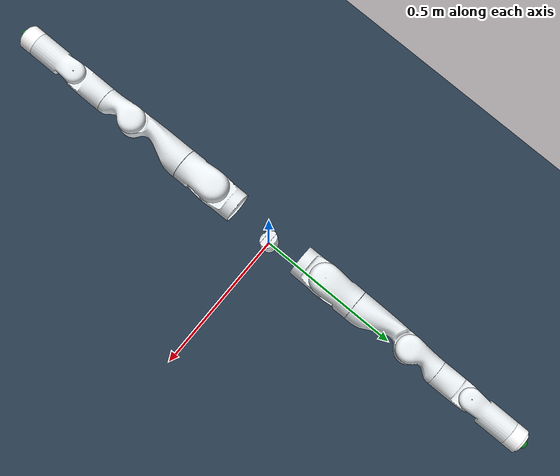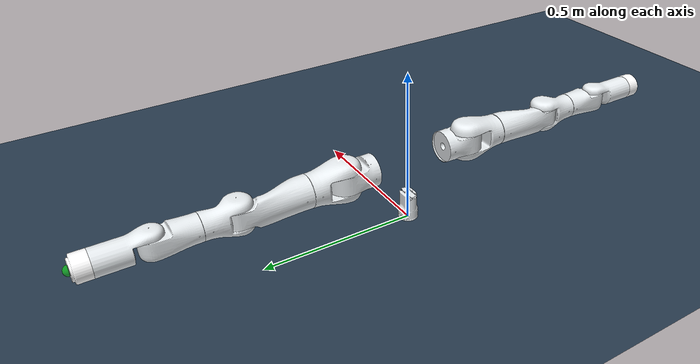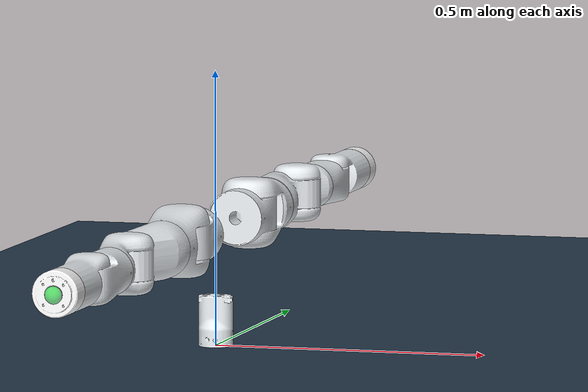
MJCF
<mujoco model="K1">
    <compiler angle="radian"/>
    <size njmax="500" nconmax="100" />
    <option timestep="0.001"/>

    <default>
    <default class="k1">
      <joint frictionloss="0.3" armature="0.005"/>
          <position  forcerange="-100 100"/>
      </default>

      <default class="visual">
        <geom group="2" type="mesh" contype="0" conaffinity="0" density="0"/>
      </default>

      <default class="collision">
        <geom group="3" type="capsule"/>
      </default>

  </default>

    <asset>
        <texture name="grid" type="2d" builtin="checker" rgb1=".2 .3 .4" rgb2=".1 0.15 0.2" width="512" height="512" mark="cross" markrgb=".8 .8 .8"/>
        <material name="gridmat" texture="grid" texrepeat="10 10" reflectance="0.2"/>

        <mesh name="K1_base" file="K1/meshes/base_link.STL"/>
        <mesh name="r1" file="K1/meshes/r1.STL"/>
        <mesh name="r2" file="K1/meshes/r2.STL"/>
        <mesh name="r3" file="K1/meshes/r3.STL"/>
        <mesh name="r4" file="K1/meshes/r4.STL"/>
        <mesh name="r5" file="K1/meshes/r5.STL"/>
        <mesh name="r6" file="K1/meshes/r6.STL"/>
        <mesh name="r7" file="K1/meshes/r7.STL"/>
        <mesh name="rt" file="K1/meshes/rt.STL"/>
        <mesh name="l1" file="K1/meshes/l1.STL"/>
        <mesh name="l2" file="K1/meshes/l2.STL"/>
        <mesh name="l3" file="K1/meshes/l3.STL"/>
        <mesh name="l4" file="K1/meshes/l4.STL"/>
        <mesh name="l5" file="K1/meshes/l5.STL"/>
        <mesh name="l6" file="K1/meshes/l6.STL"/>
        <mesh name="l7" file="K1/meshes/l7.STL"/>
        <mesh name="lt" file="K1/meshes/lt.STL"/>
    </asset>

  <worldbody>
     <geom name="ground" type="plane" size="10 10 0.1" pos="0 0 0" material="gridmat"/>

    <body name="K1" pos="0 0 0">
    <geom type="mesh" rgba="0.898039 0.917647 0.929412 1" mesh="K1_base" />
      <body name="r1" pos="0 -0.015 0.217" quat="0.707105 0.707108 0 0">
        <inertial pos="2.46089e-06 2.84971e-07 0.164287" quat="0.707167 2.59119e-05 9.84412e-06 0.707047" mass="1.49079" diaginertia="0.00378376 0.00305952 0.00212532"/>
        <joint name="r-j1" pos="0 0 0" axis="0 0 1" range="-6.2832 6.2832"/>
        <geom type="mesh" rgba="0.898039 0.917647 0.929412 1" mesh="r1"/>
        <body name="r2" pos="0 0 0.2075" quat="-2.59734e-06 2.59735e-06 0.707108 -0.707105">
          <inertial pos="1.71094e-05 -0.0452986 -0.000762955" quat="0.727478 0.686131 0.000277485 0.000318842" mass="2.70256" diaginertia="0.00984923 0.00748401 0.00588084"/>
          <joint name="r-j2" pos="0 0 0" axis="0 0 1" range="-1.8325 1.8325" />
          <geom type="mesh" rgba="0.898039 0.917647 0.929412 1" mesh="r2"/>
          <body name="r3" quat="0.707105 0.707108 0 0">
            <inertial pos="0.00699745 0.000445737 0.236701" quat="0.709376 0.00337082 0.00258928 0.704817" mass="3.54789" diaginertia="0.0186989 0.0185309 0.00375394"/>
            <joint name="r-j3" pos="0 0 0" axis="0 0 1" range="-6.2832 6.2832" />
            <geom type="mesh" rgba="0.898039 0.917647 0.929412 1" mesh="r3"/>
            <body name="r4" pos="-0.00040027 0 0.33028" quat="0.707105 -0.707108 0 0">
              <inertial pos="0.00464519 -0.0316041 0.000428234" quat="0.711055 0.701258 0.0356952 0.0369292" mass="1.47374" diaginertia="0.00380982 0.00281145 0.00223921"/>
              <joint name="r-j4" pos="0 0 0" axis="0 0 1" range="-2.5307 0.5235" />
              <geom type="mesh" rgba="0.898039 0.917647 0.929412 1" mesh="r4"/>
              <body name="r5" quat="0.707105 0.707108 0 0">
                <inertial pos="-2.73577e-06 0.00407884 0.18353" quat="0.706646 -0.037008 0.0369129 0.705634" mass="2.28081" diaginertia="0.00561892 0.0054924 0.00191859"/>
                <joint name="r-j5" pos="0 0 0" axis="0 0 1" range="-6.2832 6.2832" />
                <geom type="mesh" rgba="0.898039 0.917647 0.929412 1" mesh="r5"/>
                <body name="r6" pos="0 0 0.23494" quat="-2.59734e-06 2.59735e-06 0.707108 -0.707105">
                  <inertial pos="-1.87506e-07 -0.086963 0.00554801" quat="0.430647 0.56085 -0.560836 0.430644" mass="1.76168" diaginertia="0.00445732 0.00444042 0.00137145"/>
                  <joint name="r-j6" pos="0 0 0" axis="0 0 1" range="-1.8325 1.8325" />
                  <geom type="mesh" rgba="0.898039 0.917647 0.929412 1" mesh="r6"/>
                  <body name="r7" quat="0.707105 0.707108 0 0">
                    <inertial pos="2.68777e-07 -3.37424e-05 0.17628" quat="0.0010751 0.707106 0.0010751 0.707106" mass="0.636542" diaginertia="0.000512339 0.000371318 0.000370813"/>
                    <joint name="r-j7" pos="0 0 0" axis="0 0 1" range="-6.2832 6.2832" />
                    <geom type="mesh" rgba="1 1 1 1" mesh="r7"/>
                    <geom pos="0 0 0.20277" quat="1 0 0 0" type="mesh" rgba="0.792157 0.819608 0.933333 1" mesh="rt"/>
                                    <site name="wrist_flange_right" pos="0 0 0.202772" size="0.015" type="sphere" rgba="0 1 0 0.5"/>
                  </body>
                </body>
              </body>
            </body>
          </body>
        </body>
      </body>

      <body name="l1" pos="0 0.015 0.217" quat="-2.59734e-06 -2.59735e-06 -0.707108 -0.707105">
      <inertial pos="-2.46089e-06 -2.84971e-07 0.164287" quat="0.707167 -2.59119e-05 -9.84412e-06 0.707047" mass="1.49079" diaginertia="0.00378376 0.00305952 0.00212532"/>
      <joint name="l-j1" pos="0 0 0" axis="0 0 1" range="-6.2832 6.2832" />
      <geom type="mesh" rgba="0.898039 0.917647 0.929412 1" mesh="l1"/>
      <body name="l2" pos="0 0 0.2075" quat="0.707105 -0.707108 0 0">
        <inertial pos="1.71098e-05 -0.0452986 -0.000764631" quat="0.727478 0.686131 0.000277483 0.000318848" mass="2.70256" diaginertia="0.00984923 0.00748401 0.00588084"/>
        <joint name="l-j2" pos="0 0 0" axis="0 0 1" range="-1.8325 1.8325" />
        <geom type="mesh" rgba="0.898039 0.917647 0.929412 1" mesh="l2"/>
        <body name="l3" quat="0.707105 0.707108 0 0">
          <inertial pos="0.00699745 0.000444598 0.236701" quat="0.709376 0.00337002 0.00259008 0.704817" mass="3.54789" diaginertia="0.0186989 0.0185309 0.00375394"/>
          <joint name="l-j3" pos="0 0 0" axis="0 0 1" range="-6.2832 6.2832" />
          <geom type="mesh" rgba="0.898039 0.917647 0.929412 1" mesh="l3"/>
          <body name="l4" pos="-0.00040027 0 0.33028" quat="0.707105 -0.707108 0 0">
            <inertial pos="0.00464517 -0.0316039 0.000428109" quat="0.711056 0.701257 0.0356954 0.0369292" mass="1.47374" diaginertia="0.00380982 0.00281146 0.00223921"/>
            <joint name="l-j4" pos="0 0 0" axis="0 0 1" range="-2.5307 0.5235" />
            <geom type="mesh" rgba="0.898039 0.917647 0.929412 1" mesh="l4"/>
            <body name="l5" quat="0.707105 0.707108 0 0">
              <inertial pos="2.28035e-06 -0.00407998 0.18353" quat="0.706533 0.037006 -0.0369278 0.705746" mass="2.28088" diaginertia="0.005619 0.00549252 0.00191867"/>
              <joint name="l-j5" pos="0 0 0" axis="0 0 1" range="-6.2832 6.2832" />
              <geom type="mesh" rgba="0.898039 0.917647 0.929412 1" mesh="l5"/>
              <body name="l6" pos="0 0 0.23494" quat="0.707105 -0.707108 0 0">
                <inertial pos="-1.87506e-07 -0.086963 0.00555106" quat="0.430647 0.56085 -0.560836 0.430644" mass="1.76168" diaginertia="0.00445732 0.00444042 0.00137145"/>
                <joint name="l-j6" pos="0 0 0" axis="0 0 1" range="-1.8325 1.8325"/>
                <geom type="mesh" rgba="0.898039 0.917647 0.929412 1" mesh="l6"/>
                <body name="l7" quat="0.707105 0.707108 0 0">
                  <inertial pos="2.68777e-07 -3.10986e-05 0.17628" quat="0.00107456 0.707106 0.00107456 0.707106" mass="0.636542" diaginertia="0.000512339 0.000371319 0.000370813"/>
                  <joint name="l-j7" pos="0 0 0" axis="0 0 1" range="-6.2832 6.2832" />
                  <geom type="mesh" rgba="1 1 1 1" mesh="l7"/>
                  <geom pos="0 0 0.202772" quat="1 0 0 0" type="mesh" rgba="0.792157 0.819608 0.933333 1" mesh="lt"/>
                  <site name="wrist_flange_left" pos="0 0 0.202772" size="0.015" type="sphere" rgba="0 1 0 0.5"/>
                </body>
              </body>
            </body>
          </body>
        </body>
      </body>
      </body>
      </body>
  </worldbody>

<contact>
    <exclude body1="r1" body2="r2"/>
    <exclude body1="r2" body2="r3"/>
    <exclude body1="r3" body2="r4"/>
    <exclude body1="r4" body2="r5"/>
    <exclude body1="r5" body2="r6"/>
    <exclude body1="r6" body2="r7"/>

    <exclude body1="l1" body2="l2"/>
    <exclude body1="l2" body2="l3"/>
    <exclude body1="l3" body2="l4"/>
    <exclude body1="l4" body2="l5"/>
    <exclude body1="l5" body2="l6"/>
    <exclude body1="l6" body2="l7"/>

    <exclude body1="K1" body2="r1"/>
    <exclude body1="K1" body2="l1"/>
</contact>

    <actuator>
        <!-- Right Arm Actuators -->
        <position name="r-j1" joint="r-j1" ctrllimited="true" ctrlrange="-6.2832 6.2832" class="k1" kp="80" kv="5"/>
        <position name="r-j2" joint="r-j2" ctrllimited="true" ctrlrange="-1.8325 1.8325" class="k1" kp="40" kv="5"/>
        <position name="r-j3" joint="r-j3" ctrllimited="true" ctrlrange="-6.2832 6.2832" class="k1" kp="40" kv="5"/>
        <position name="r-j4" joint="r-j4" ctrllimited="true" ctrlrange="-2.5307 0.5235" class="k1" kp="40" kv="5"/>
        <position name="r-j5" joint="r-j5" ctrllimited="true" ctrlrange="-6.2832 6.2832" class="k1" kp="5" kv="1.5"/>
        <position name="r-j6" joint="r-j6" ctrllimited="true" ctrlrange="-1.8325 1.8325" class="k1" kp="5" kv="1.5"/>
        <position name="r-j7" joint="r-j7" ctrllimited="true" ctrlrange="-6.2832 6.2832" class="k1" kp="5" kv="1.5"/>

        <!-- Left Arm Actuators -->
        <position name="l-j1" joint="l-j1" ctrllimited="true" ctrlrange="-6.2832 6.2832" class="k1" kp="80" kv="5"/>
        <position name="l-j2" joint="l-j2" ctrllimited="true" ctrlrange="-1.8325 1.8325" class="k1" kp="40" kv="5"/>
        <position name="l-j3" joint="l-j3" ctrllimited="true" ctrlrange="-6.2832 6.2832" class="k1" kp="40" kv="5"/>
        <position name="l-j4" joint="l-j4" ctrllimited="true" ctrlrange="-2.5307 0.5235" class="k1" kp="40" kv="5"/>
        <position name="l-j5" joint="l-j5" ctrllimited="true" ctrlrange="-6.2832 6.2832" class="k1" kp="5" kv="1.5"/>
        <position name="l-j6" joint="l-j6" ctrllimited="true" ctrlrange="-1.8325 1.8325" class="k1" kp="5" kv="1.5"/>
        <position name="l-j7" joint="l-j7" ctrllimited="true" ctrlrange="-6.2832 6.2832" class="k1" kp="5" kv="1.5"/>
    </actuator>

</mujoco>
